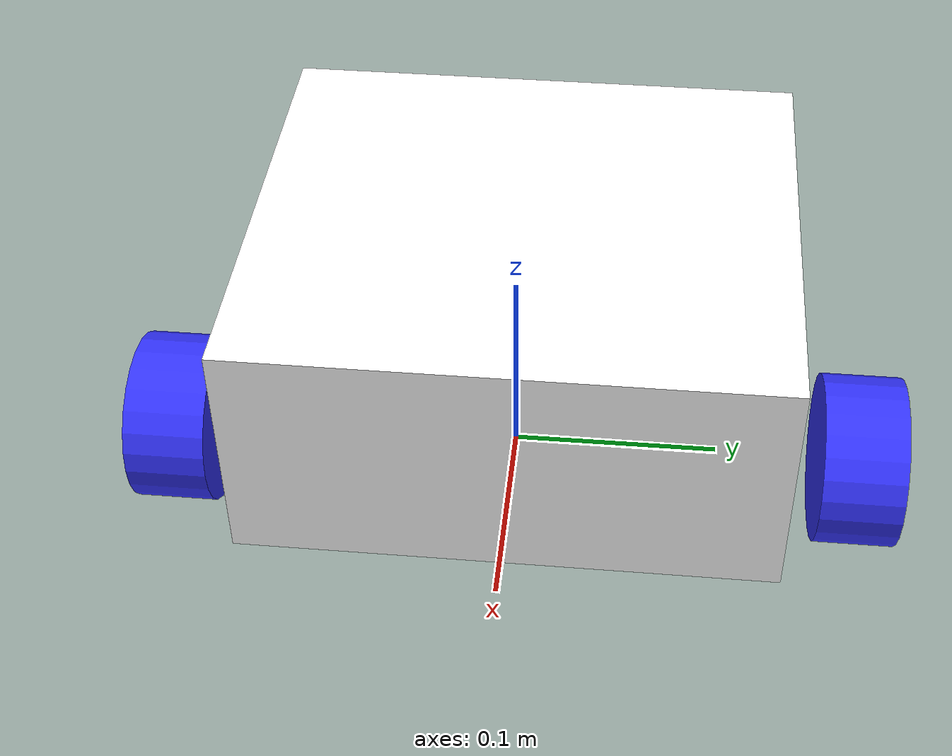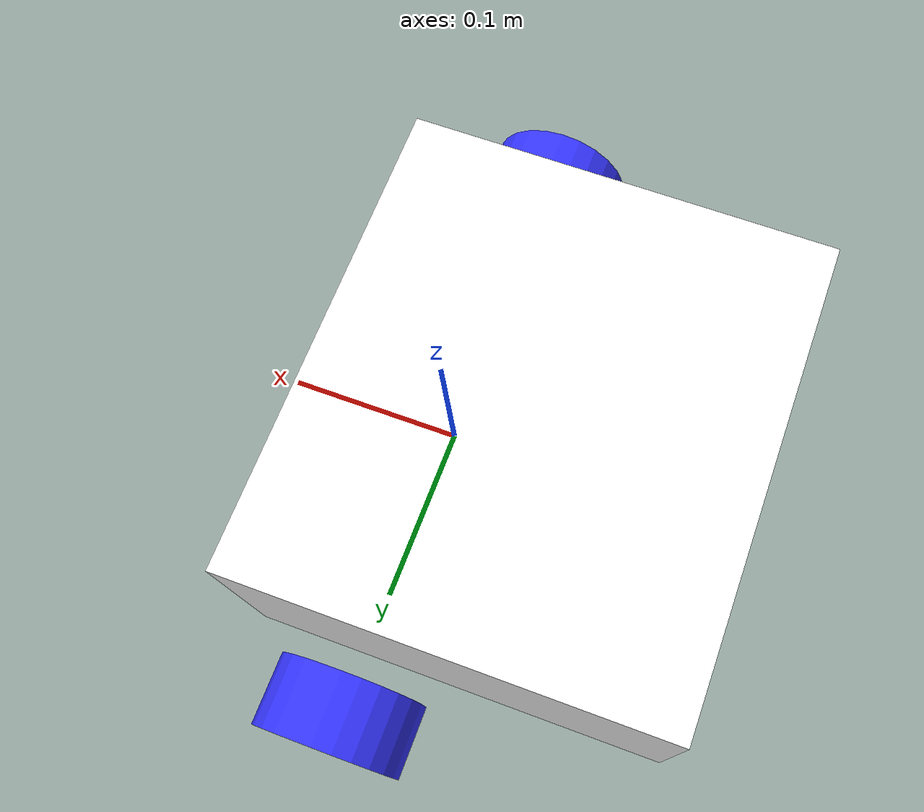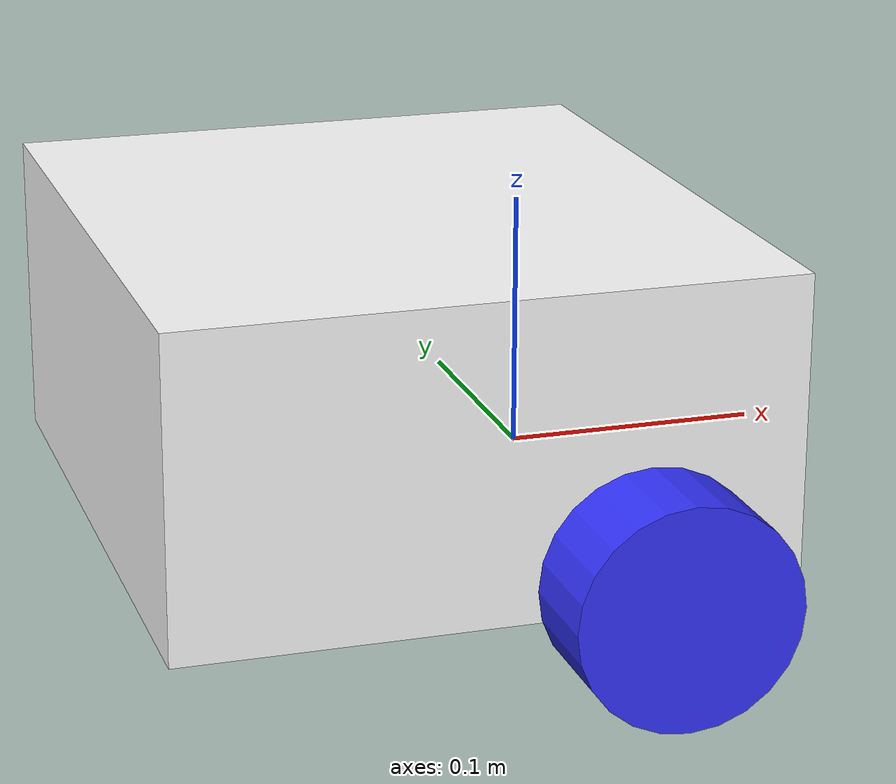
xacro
<?xml version="1.0"?>
<robot xmlns:xacro="http://www.ros.org/wiki/xacro" name="AXLR">
    <xacro:include filename="properties.urdf.xacro"/>
    <xacro:include filename="core.urdf.xacro"/>
    <xacro:include filename="imu.urdf.xacro"/>
    <xacro:include filename="gazebo_properties.urdf.xacro"/>
    <xacro:include filename="axlr_ros2_control.urdf.xacro"/>
</robot>

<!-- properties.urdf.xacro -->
<robot xmlns:xacro="http://www.ros.org/wiki/xacro">
    <xacro:property name="base_length" value="0.266"/>
    <xacro:property name="base_width" value="0.237"/>
    <xacro:property name="base_height" value="0.122"/>
    <xacro:property name="wheel_offset_from_ground" value="0.072"/>
    <xacro:property name="wheel_offset_from_width" value="0.0325"/>
    <xacro:property name="wheel_offset_from_side" value="0.025"/>
    <xacro:property name="wheel_offset_from_top" value="0.03"/>
    <xacro:property name="wheel_diameter" value="0.084"/>
    <xacro:property name="wheel_length" value="0.04"/>
    <xacro:property name="center_offset" value="0.0285"/>
    <xacro:property name="caster_offset" value="0.0285"/>
    <xacro:property name="PI" value="3.14159"/>

    <xacro:property name="wheel_seperation" value="0.316"/>

    <material name="white">
        <color rgba="1.0 1.0 1.0 1.0"/>
    </material>
    <material name="black">
        <color rgba="0.0 0.0 0.0 1.0"/>
    </material>
</robot>

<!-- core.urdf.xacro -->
<robot xmlns:xacro="http://www.ros.org/wiki/xacro" >

    <xacro:arg name="is_sim" default="true"/>

    <xacro:include filename="inertial_macro.urdf.xacro"/>

    <xacro:property name="chassis_width" value="0.266"/>
    <xacro:property name="chassis_length" value="0.237"/>
    <xacro:property name="chassis_height" value="0.122"/>
    <xacro:property name="chassis_mass" value="5"/>
    <xacro:property name="wheel_radius" value="0.042"/>
    <xacro:property name="wheel_thickness" value="0.04"/>
    <xacro:property name="wheel_mass" value="1.0"/>
    <xacro:property name="wheel_offset_x" value="0.171"/>
    <xacro:property name="wheel_offset_y" value="0.017"/>
    <xacro:property name="wheel_offset_z" value="0.02"/>
    <xacro:property name="caster_wheel_radius" value="0.014"/>
    <xacro:property name="caster_wheel_mass" value="0.5"/>
    <xacro:property name="caster_wheel_offset_x" value="0.05625"/>
    <xacro:property name="caster_wheel_offset_z" value="${wheel_offset_z - wheel_radius + caster_wheel_radius}"/>

    <material name="blue">
        <color rgba="0.2 0.2 1 1"/>
    </material>

    <material name="red">
        <color rgba="1 0 0 1"/>
    </material>

    <!-- BASE LINK -->

    <link name="base_link">

    </link>

    <!-- BASE_FOOTPRINT LINK -->

    <joint name="base_footprint_joint" type="fixed">
        <parent link="base_link"/>
        <child link="base_footprint"/>
        <origin xyz="0 0 0" rpy="0 0 0"/>
    </joint>

    <link name="base_footprint">
    </link>

    <!-- CHASSIS LINK -->

    <joint name="chassis_joint" type="fixed">
        <parent link="base_link"/>
        <child link="chassis"/>
        <origin xyz="${-wheel_offset_x} 0 ${-wheel_offset_z}"/>
    </joint>

    <link name="chassis">
        <visual>
            <origin xyz="${chassis_length/2} 0 ${chassis_height/2}"/>
            <geometry>
                <box size="${chassis_length} ${chassis_width} ${chassis_height}"/>
            </geometry>
            <material name="white"/>
        </visual>
        <collision>
            <origin xyz="${chassis_length/2} 0 ${chassis_height/2}"/>
            <geometry>
                <box size="${chassis_length} ${chassis_width} ${chassis_height}"/>
            </geometry>
        </collision>
        <xacro:inertial_box mass="2.5" x="${chassis_length}" y="${chassis_width}" z="${chassis_height}">
            <origin xyz="${chassis_length/2} 0 ${chassis_height/2}" rpy="0 0 0"/>
        </xacro:inertial_box>
    </link>

    <!-- LEFT WHEEL LINK -->

    <joint name="left_wheel_joint" type="continuous">
        <parent link="base_link"/>
        <child link="left_wheel"/>
        <origin xyz="0 0.17 0" rpy="${pi/2} 0 0" />
        <axis xyz="0 0 -1"/>
    </joint>

    <link name="left_wheel">
        <visual>
            <geometry>
                <cylinder radius="${wheel_radius}" length="${wheel_thickness}"/>
            </geometry>
            <material name="blue"/>
        </visual>
        <collision>
            <geometry>
                <sphere radius="${wheel_radius}"/>
            </geometry>
        </collision>
        <xacro:inertial_cylinder mass="${wheel_mass}" length="${wheel_thickness}" radius="${wheel_radius}">
            <origin xyz="0 0 0" rpy="0 0 0"/>
        </xacro:inertial_cylinder>
    </link>

    <!-- RIGHT WHEEL LINK -->

    <joint name="right_wheel_joint" type="continuous">
        <parent link="base_link"/>
        <child link="right_wheel"/>
        <origin xyz="0 -0.17 0" rpy="${pi/2} 0 0" />
        <axis xyz="0 0 -1"/>
    </joint>

    <link name="right_wheel">
        <visual>
            <geometry>
                <cylinder radius="${wheel_radius}" length="${wheel_thickness}"/>
            </geometry>
            <material name="blue"/>
        </visual>
        <collision>
            <geometry>
                <sphere radius="${wheel_radius}"/>
            </geometry>
        </collision>
        <xacro:inertial_cylinder mass="${wheel_mass}" length="${wheel_thickness}" radius="${wheel_radius}">
            <origin xyz="0 0 0" rpy="0 0 0"/>
        </xacro:inertial_cylinder>
    </link>

    <!-- CASTER WHEEL LINK -->

    <joint name="caster_wheel_joint" type="fixed">
        <parent link="chassis"/>
        <child link="caster_wheel"/>
        <origin xyz="${caster_wheel_offset_x} 0 ${caster_wheel_offset_z}"/>
    </joint>

    <link name="caster_wheel">
        <visual>
            <geometry>
                <sphere radius="${caster_wheel_radius}"/>
            </geometry>
            <material name="white"/>
        </visual>
        <collision>
            <geometry>
                <sphere radius="${caster_wheel_radius}"/>
            </geometry>
        </collision>
        <xacro:inertial_sphere mass="${caster_wheel_mass}" radius="${caster_wheel_radius}">
            <origin xyz="0 0 0" rpy="0 0 0"/>
        </xacro:inertial_sphere>
    </link>

</robot>

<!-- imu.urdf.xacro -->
<robot xmlns:xacro="http://www.ros.org/wiki/xacro">

    <link name="imu_link">
        <visual>
            <origin xyz="0.0 0.0 0.0" rpy="0.0 0.0 0.0"/>
            <geometry>
                <box size="0.02 0.01 0.001"/>
            </geometry>
            <material name="black"/>
        </visual>
        <collision>
            <origin xyz="0.0 0.0 0.0" rpy="0.0 0.0 0.0"/>
            <geometry>
                <box size="0.02 0.01 0.001"/>
            </geometry>
            <material name="black"/>
        </collision>
        <xacro:inertial_box mass="0.01" x="0.02" y="0.01" z="0.001">
            <origin xyz="0 0 0" rpy="0 0 0"/>
        </xacro:inertial_box>
    </link>

    <joint name="imu_joint" type="fixed">
        <parent link="base_link"/>
        <child link="imu_link"/>
        <origin xyz="0.0 0.0 0.0" rpy="0.0 0.0 0.0"/>
    </joint>

</robot>
